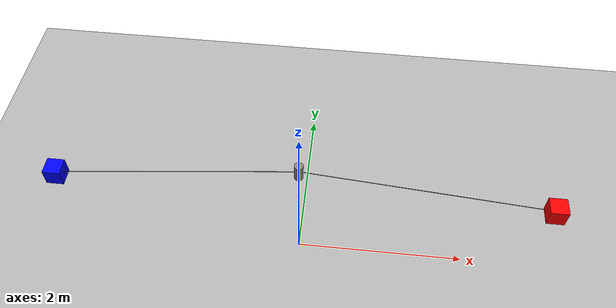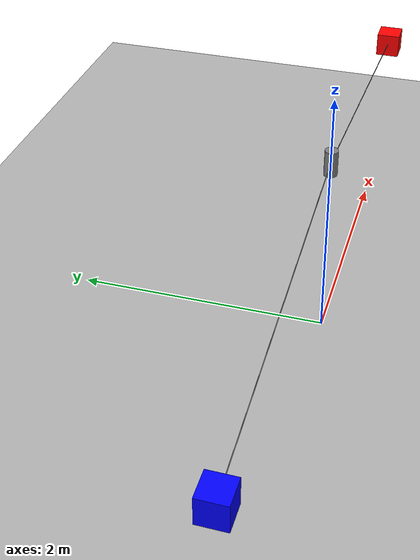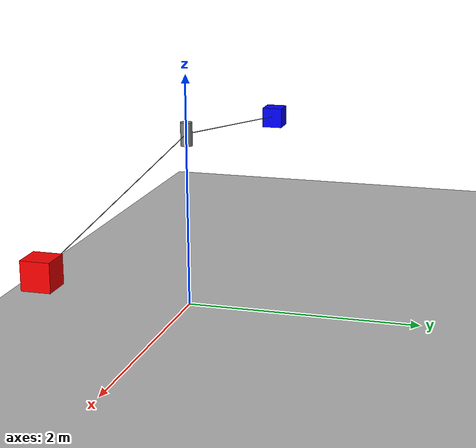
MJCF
<mujoco model="atwood_machine_inclined">
    <compiler angle="radian"/>
    <option timestep="0.01" gravity="0 0 -9.81"/>

    <default>
        <joint armature="0" damping="0.1" stiffness="0"/>
        <geom condim="3" friction="1.5 1.5 0.1"/> <!-- High enough to prevent sliding -->
    </default>

    <worldbody>
        <!-- Ground plane -->
        <geom name="ground" type="plane" pos="0 0 0" size="10 10 0.1" rgba="0.7 0.7 0.7 1"/>

        <!-- Pulley centered between inclined planes -->
        <body name="pulley" pos="0 0 1.5">
            <geom type="cylinder" size="0.05 0.1" rgba="0.5 0.5 0.5 1"/>
        </body>

        <!-- Left Inclined Plane (shallower) -->
        <body name="incline_left" pos="-1.5 0 0">
            <geom type="plane" size="3 1 0.1" rgba="0.2 0.6 0.8 1" quat="0.173 0 0 0.985"/> <!-- ~20° incline -->
        </body>

        <!-- Right Inclined Plane (steeper) -->
        <body name="incline_right" pos="1.5 0 0">
            <geom type="plane" size="3 1 0.1" rgba="0.2 0.8 0.2 1" quat="0.342 0 0 0.940"/> <!-- ~40° incline -->
        </body>

        <!-- Left Block (on shallower incline) -->
        <body name="mass1" pos="-2.8 0 1.1">
            <joint name="j1" type="free"/>
            <geom type="box" size="0.1 0.1 0.1" mass="0.5" rgba="0 0 1 1"/>
            <site name="mass1_site" pos="0 0 0"/>
        </body>

        <!-- Right Block (on steeper incline) -->
        <body name="mass2" pos="2.8 0 1.2">
            <joint name="j2" type="free"/>
            <geom type="box" size="0.1 0.1 0.1" mass="1.0" rgba="1 0 0 1"/>
            <site name="mass2_site" pos="0 0 0"/>
        </body>

        <!-- Pulley site -->
        <site name="pulley_site" pos="0 0 1.5"/>
    </worldbody>

    <!-- Tendon simulating a rope passing through the pulley -->
    <tendon>
        <spatial name="pulley_rope">
            <site site="mass1_site"/>
            <site site="pulley_site"/>
            <site site="mass2_site"/>
        </spatial>
    </tendon>
</mujoco>
